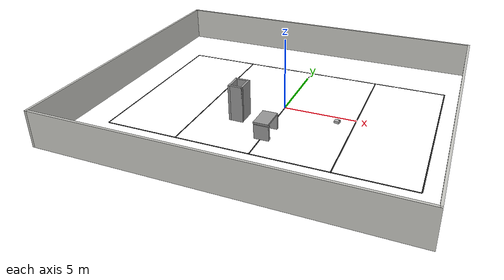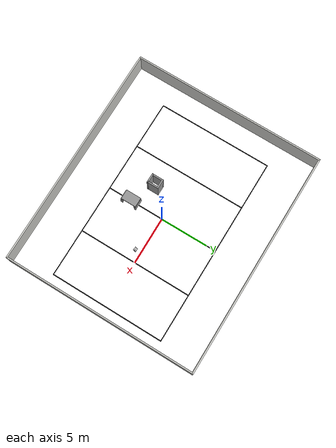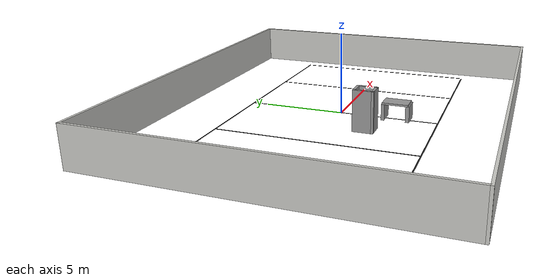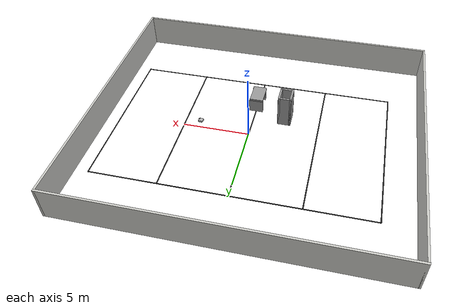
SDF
<sdf version="1.7">
 <world name="default">
  <light name="sun" type="directional">
   <pose>0 0 10 0 -0 0</pose>
   <diffuse>0.8 0.8 0.8 1</diffuse>
   <specular>0.1 0.1 0.1 1</specular>
   <attenuation>
    <range>1000</range>
    <constant>0.9</constant>
    <linear>0.01</linear>
    <quadratic>0.001</quadratic>
   </attenuation>
   <direction>-0.5 0.5 -1</direction>
   <spot><inner_angle>0</inner_angle><outer_angle>0</outer_angle><falloff>0</falloff></spot>
  </light>
  <gravity>0 0 -9.8</gravity>
  <magnetic_field>6e-06 2.3e-05 -4.2e-05</magnetic_field>
  <atmosphere type="adiabatic"/>
  <physics name="default_physics" default="0" type="ode">
   <max_step_size>0.001</max_step_size>
   <real_time_factor>1</real_time_factor>
   <real_time_update_rate>1000</real_time_update_rate>
  </physics>
  <scene><ambient>0.4 0.4 0.4 1</ambient><background>0.7 0.7 0.7 1</background><shadows>1</shadows></scene>
  <spherical_coordinates>
   <surface_model>EARTH_WGS84</surface_model>
   <latitude_deg>0</latitude_deg>
   <longitude_deg>0</longitude_deg>
   <elevation>0</elevation>
   <heading_deg>0</heading_deg>
  </spherical_coordinates>
  <model name="walls">
   <pose>-0.635 -0.01 0 0 -0 0</pose>
   <link name="Wall_11">
    <collision name="Wall_11_Collision">
     <geometry><box><size>23.5 0.15 2.5</size></box></geometry>
     <pose>0 0 1.25 0 -0 0</pose>
    </collision>
    <visual name="Wall_11_Visual">
     <pose>0 0 1.25 0 -0 0</pose>
     <geometry><box><size>23.5 0.15 2.5</size></box></geometry>
     <material>
      <script><uri>file://media/materials/scripts/gazebo.material</uri><name>Gazebo/CeilingTiled</name></script>
      <ambient>0.760784 0.662745 0.627451 1</ambient>
     </material>
     <meta><layer>0</layer></meta>
    </visual>
    <pose>0 10.05 0 0 -0 0</pose>
   </link>
   <link name="Wall_12">
    <collision name="Wall_12_Collision">
     <geometry><box><size>20.25 0.15 2.5</size></box></geometry>
     <pose>0 0 1.25 0 -0 0</pose>
    </collision>
    <visual name="Wall_12_Visual">
     <pose>0 0 1.25 0 -0 0</pose>
     <geometry><box><size>20.25 0.15 2.5</size></box></geometry>
     <material>
      <script><uri>file://media/materials/scripts/gazebo.material</uri><name>Gazebo/CeilingTiled</name></script>
      <ambient>0.760784 0.662745 0.627451 1</ambient>
     </material>
     <meta><layer>0</layer></meta>
    </visual>
    <pose>11.675 0 0 0 -0 -1.5708</pose>
   </link>
   <link name="Wall_13">
    <collision name="Wall_13_Collision">
     <geometry><box><size>23.5 0.15 2.5</size></box></geometry>
     <pose>0 0 1.25 0 -0 0</pose>
    </collision>
    <visual name="Wall_13_Visual">
     <pose>0 0 1.25 0 -0 0</pose>
     <geometry><box><size>23.5 0.15 2.5</size></box></geometry>
     <material>
      <script><uri>file://media/materials/scripts/gazebo.material</uri><name>Gazebo/CeilingTiled</name></script>
      <ambient>0.760784 0.662745 0.627451 1</ambient>
     </material>
     <meta><layer>0</layer></meta>
    </visual>
    <pose>0 -10.05 0 0 -0 3.14159</pose>
   </link>
   <link name="Wall_14">
    <collision name="Wall_14_Collision">
     <geometry><box><size>20.25 0.15 2.5</size></box></geometry>
     <pose>0 0 1.25 0 -0 0</pose>
    </collision>
    <visual name="Wall_14_Visual">
     <pose>0 0 1.25 0 -0 0</pose>
     <geometry><box><size>20.25 0.15 2.5</size></box></geometry>
     <material>
      <script><uri>file://media/materials/scripts/gazebo.material</uri><name>Gazebo/CeilingTiled</name></script>
      <ambient>0.760784 0.662745 0.627451 1</ambient>
     </material>
     <meta><layer>0</layer></meta>
    </visual>
    <pose>-11.675 0 0 0 -0 1.5708</pose>
   </link>
   <static>1</static>
  </model>
  <model name="yol line_0">
   <static>1</static>
   <link name="link_ground">
    <collision name="collision">
     <geometry><plane><normal>0 0 1</normal><size>20.043 0.08</size></plane></geometry>
     <surface><friction><ode><mu>100</mu><mu2>50</mu2></ode></friction></surface>
    </collision>
    <visual name="visual_ground">
     <cast_shadows>0</cast_shadows>
     <geometry><plane><normal>0 0 1</normal><size>20.043 0.08</size></plane></geometry>
     <material>
      <script><uri>file://media/materials/scripts/gazebo.material</uri><name>Gazebo/Black</name></script>
     </material>
    </visual>
   </link>
   <pose>-0.0185 -6.003 0 0 -0 3.14159</pose>
  </model>
  <model name="yol line_10">
   <static>1</static>
   <link name="link_ground">
    <collision name="collision">
     <geometry><plane><normal>0 0 1</normal><size>12.084 0.08</size></plane></geometry>
     <surface><friction><ode><mu>100</mu><mu2>50</mu2></ode></friction></surface>
    </collision>
    <visual name="visual_ground">
     <cast_shadows>0</cast_shadows>
     <geometry><plane><normal>0 0 1</normal><size>12.084 0.08</size></plane></geometry>
     <material>
      <script><uri>file://media/materials/scripts/gazebo.material</uri><name>Gazebo/Black</name></script>
     </material>
    </visual>
   </link>
   <pose>10 0.001 0 0 0 -1.5708</pose>
  </model>
  <model name="yol line_2">
   <static>1</static>
   <link name="link_ground">
    <collision name="collision">
     <geometry><plane><normal>0 0 1</normal><size>12.005 0.08</size></plane></geometry>
     <surface><friction><ode><mu>100</mu><mu2>50</mu2></ode></friction></surface>
    </collision>
    <visual name="visual_ground">
     <cast_shadows>0</cast_shadows>
     <geometry><plane><normal>0 0 1</normal><size>12.005 0.08</size></plane></geometry>
     <material>
      <script><uri>file://media/materials/scripts/gazebo.material</uri><name>Gazebo/Black</name></script>
     </material>
    </visual>
   </link>
   <pose>0 -0.0015 0 0 0 -1.5708</pose>
  </model>
  <model name="yol line_12">
   <static>1</static>
   <link name="link_ground">
    <collision name="collision">
     <geometry><plane><normal>0 0 1</normal><size>12.005 0.08</size></plane></geometry>
     <surface><friction><ode><mu>100</mu><mu2>50</mu2></ode></friction></surface>
    </collision>
    <visual name="visual_ground">
     <cast_shadows>0</cast_shadows>
     <geometry><plane><normal>0 0 1</normal><size>12.005 0.08</size></plane></geometry>
     <material>
      <script><uri>file://media/materials/scripts/gazebo.material</uri><name>Gazebo/Black</name></script>
     </material>
    </visual>
   </link>
   <pose>5 -0.0015 0 0 0 -1.5708</pose>
  </model>
  <model name="yol line_14">
   <static>1</static>
   <link name="link_ground">
    <collision name="collision">
     <geometry><plane><normal>0 0 1</normal><size>12.005 0.08</size></plane></geometry>
     <surface><friction><ode><mu>100</mu><mu2>50</mu2></ode></friction></surface>
    </collision>
    <visual name="visual_ground">
     <cast_shadows>0</cast_shadows>
     <geometry><plane><normal>0 0 1</normal><size>12.005 0.08</size></plane></geometry>
     <material>
      <script><uri>file://media/materials/scripts/gazebo.material</uri><name>Gazebo/Black</name></script>
     </material>
    </visual>
   </link>
   <pose>-5 -0.0015 0 0 0 -1.5708</pose>
  </model>
  <model name="yol line_16">
   <static>1</static>
   <link name="link_ground">
    <collision name="collision">
     <geometry><plane><normal>0 0 1</normal><size>12.005 0.08</size></plane></geometry>
     <surface><friction><ode><mu>100</mu><mu2>50</mu2></ode></friction></surface>
    </collision>
    <visual name="visual_ground">
     <cast_shadows>0</cast_shadows>
     <geometry><plane><normal>0 0 1</normal><size>12.005 0.08</size></plane></geometry>
     <material>
      <script><uri>file://media/materials/scripts/gazebo.material</uri><name>Gazebo/Black</name></script>
     </material>
    </visual>
   </link>
   <pose>-0.038 6.003 0 0 -0 0</pose>
  </model>
  <model name="yol line_18">
   <static>1</static>
   <link name="link_ground">
    <collision name="collision">
     <geometry><plane><normal>0 0 1</normal><size>20.002 0.08</size></plane></geometry>
     <surface><friction><ode><mu>100</mu><mu2>50</mu2></ode></friction></surface>
    </collision>
    <visual name="visual_ground">
     <cast_shadows>0</cast_shadows>
     <geometry><plane><normal>0 0 1</normal><size>20.002 0.08</size></plane></geometry>
     <material>
      <script><uri>file://media/materials/scripts/gazebo.material</uri><name>Gazebo/Black</name></script>
     </material>
    </visual>
   </link>
   <pose>-0.038 6.003 0 0 -0 0</pose>
  </model>
  <model name="yol line_8">
   <static>1</static>
   <link name="link_ground">
    <collision name="collision">
     <geometry><plane><normal>0 0 1</normal><size>12.0056 0.08</size></plane></geometry>
     <surface><friction><ode><mu>100</mu><mu2>50</mu2></ode></friction></surface>
    </collision>
    <visual name="visual_ground">
     <cast_shadows>0</cast_shadows>
     <geometry><plane><normal>0 0 1</normal><size>12.0056 0.08</size></plane></geometry>
     <material>
      <script><uri>file://media/materials/scripts/gazebo.material</uri><name>Gazebo/Black</name></script>
     </material>
    </visual>
   </link>
   <pose>-10 -0.0015 0 0 0 -1.5708</pose>
  </model>
  <model name="engelliurdf">
   <pose>-1.4275 -1.4175 0 0 -0 0</pose>
   <link name="Wall_0">
    <collision name="Wall_0_Collision">
     <geometry><box><size>1 0.15 2.5</size></box></geometry>
     <pose>0 0 1.25 0 -0 0</pose>
    </collision>
    <visual name="Wall_0_Visual">
     <pose>0 0 1.25 0 -0 0</pose>
     <geometry><box><size>1 0.15 2.5</size></box></geometry>
     <material>
      <script><uri>file://media/materials/scripts/gazebo.material</uri><name>Gazebo/Grey</name></script>
      <ambient>1 1 1 1</ambient>
     </material>
     <meta><layer>0</layer></meta>
    </visual>
    <pose>-0.9275 -1.3425 0 0 -0 3.14159</pose>
   </link>
   <link name="Wall_1">
    <collision name="Wall_1_Collision">
     <geometry><box><size>1.25 0.15 2.5</size></box></geometry>
     <pose>0 0 1.25 0 -0 0</pose>
    </collision>
    <visual name="Wall_1_Visual">
     <pose>0 0 1.25 0 -0 0</pose>
     <geometry><box><size>1.25 0.15 2.5</size></box></geometry>
     <material>
      <script><uri>file://media/materials/scripts/gazebo.material</uri><name>Gazebo/Grey</name></script>
      <ambient>1 1 1 1</ambient>
     </material>
     <meta><layer>0</layer></meta>
    </visual>
    <pose>-1.3525 -0.7925 0 0 -0 1.5708</pose>
   </link>
   <link name="Wall_2">
    <collision name="Wall_2_Collision">
     <geometry><box><size>1 0.15 2.5</size></box></geometry>
     <pose>0 0 1.25 0 -0 0</pose>
    </collision>
    <visual name="Wall_2_Visual">
     <pose>0 0 1.25 0 -0 0</pose>
     <geometry><box><size>1 0.15 2.5</size></box></geometry>
     <material>
      <script><uri>file://media/materials/scripts/gazebo.material</uri><name>Gazebo/Grey</name></script>
      <ambient>1 1 1 1</ambient>
     </material>
     <meta><layer>0</layer></meta>
    </visual>
    <pose>-0.9275 -0.2425 0 0 -0 0</pose>
   </link>
   <link name="Wall_3">
    <collision name="Wall_3_Collision">
     <geometry><box><size>1.25 0.15 2.5</size></box></geometry>
     <pose>0 0 1.25 0 -0 0</pose>
    </collision>
    <visual name="Wall_3_Visual">
     <pose>0 0 1.25 0 -0 0</pose>
     <geometry><box><size>1.25 0.15 2.5</size></box></geometry>
     <material>
      <script><uri>file://media/materials/scripts/gazebo.material</uri><name>Gazebo/Grey</name></script>
      <ambient>1 1 1 1</ambient>
     </material>
     <meta><layer>0</layer></meta>
    </visual>
    <pose>-0.5025 -0.7925 0 0 -0 -1.5708</pose>
   </link>
   <link name="Wall_4">
    <collision name="Wall_4_Collision">
     <geometry><box><size>0.15 0.15 2.5</size></box></geometry>
     <pose>0 0 1.25 0 -0 0</pose>
    </collision>
    <visual name="Wall_4_Visual">
     <pose>0 0 1.25 0 -0 0</pose>
     <geometry><box><size>0.15 0.15 2.5</size></box></geometry>
     <material>
      <script><uri>file://media/materials/scripts/gazebo.material</uri><name>Gazebo/Grey</name></script>
      <ambient>1 1 1 1</ambient>
     </material>
     <meta><layer>0</layer></meta>
    </visual>
    <pose>-0.5025 -1.3425 0 0 -0 0</pose>
   </link>
   <static>1</static>
  </model>
  <model name="robot">
   <link name="base_link">
    <inertial>
     <pose>0.09998 0 0 0 -0 0</pose>
     <mass>5.001</mass>
     <inertia><ixx>0.0201</ixx><ixy>0</ixy><ixz>0</ixz><iyy>0.02011</iyy><iyz>0</iyz><izz>0.02011</izz></inertia>
    </inertial>
    <collision name="base_link_fixed_joint_lump__chassis_collision">
     <pose>0.13 0 0.075 0 -0 0</pose>
     <geometry><box><size>0.35 0.31 0.15</size></box></geometry>
    </collision>
    <collision name="base_link_fixed_joint_lump__rear_wheel_link_collision_1">
     <pose>0.25 0 0 1.57159 1.57079 3.14159</pose>
     <geometry><sphere><radius>0.021</radius></sphere></geometry>
     <surface>
      <contact><ode><kp>1e+06</kp><kd>100</kd><max_vel>1</max_vel><min_depth>0.001</min_depth></ode></contact>
      <friction><ode><mu>0</mu><mu2>0</mu2></ode></friction>
     </surface>
    </collision>
    <visual name="base_link_fixed_joint_lump__chassis_visual">
     <pose>0.13 0 0.075 0 -0 0</pose>
     <geometry><box><size>0.35 0.31 0.15</size></box></geometry>
    </visual>
    <visual name="base_link_fixed_joint_lump__lidar_link_visual_1">
     <pose>0.25 0 0.18 0 -0 0</pose>
     <geometry><cylinder><length>0.1</length><radius>0.04</radius></cylinder></geometry>
    </visual>
    <visual name="base_link_fixed_joint_lump__rear_wheel_link_visual_2">
     <pose>0.25 0 0 1.57159 1.57079 3.14159</pose>
     <geometry><sphere><radius>0.021</radius></sphere></geometry>
    </visual>
    <sensor name="head_hokuyo_sensor" type="ray">
     <visualize>1</visualize>
     <update_rate>5.5</update_rate>
     <ray>
      <scan>
       <horizontal>
        <samples>360</samples>
        <resolution>1</resolution>
        <min_angle>-3.14</min_angle>
        <max_angle>3.14</max_angle>
       </horizontal>
       <vertical><samples>1</samples><min_angle>0</min_angle><max_angle>0</max_angle></vertical>
      </scan>
      <range><min>0.1</min><max>6</max><resolution>0.01</resolution></range>
      <noise><type>gaussian</type><mean>0</mean><stddev>0.01</stddev></noise>
     </ray>
     <plugin name="gazebo_ros_head_hokuyo_controller" filename="libgazebo_ros_laser.so">
      <topicName>/rrbot/laser/scan</topicName>
      <frameName>lidar_link</frameName>
      <robotNamespace>/</robotNamespace>
     </plugin>
     <pose>0.25 0 0.18 0 -0 0</pose>
    </sensor>
   </link>
   <joint name="left_wheel_joint" type="revolute">
    <pose relative_to="base_link">0 0.13 0.015 0 -0 0</pose>
    <parent>base_link</parent>
    <child>left_wheel_link</child>
    <axis>
     <xyz>0 1 0</xyz>
     <limit><lower>-1e+16</lower><upper>1e+16</upper></limit>
     <dynamics><spring_reference>0</spring_reference><spring_stiffness>0</spring_stiffness></dynamics>
    </axis>
   </joint>
   <link name="left_wheel_link">
    <pose relative_to="left_wheel_joint">0 0 0 0 -0 0</pose>
    <inertial>
     <mass>0.01</mass>
     <inertia><ixx>0.001</ixx><ixy>0</ixy><ixz>0</ixz><iyy>0.001</iyy><iyz>0</iyz><izz>0.001</izz></inertia>
    </inertial>
    <collision name="left_wheel_link_collision">
     <pose>0 0 0 1.57159 1.57079 3.14159</pose>
     <geometry><cylinder><length>0.024</length><radius>0.036</radius></cylinder></geometry>
     <surface>
      <contact><ode><kp>1e+06</kp><kd>100</kd><max_vel>1</max_vel><min_depth>0.001</min_depth></ode></contact>
      <friction><ode><mu>1</mu><mu2>1</mu2></ode></friction>
     </surface>
    </collision>
    <visual name="left_wheel_link_visual">
     <pose>0 0 0 1.57159 1.57079 3.14159</pose>
     <geometry><cylinder><length>0.024</length><radius>0.036</radius></cylinder></geometry>
    </visual>
   </link>
   <joint name="right_wheel_joint" type="revolute">
    <pose relative_to="base_link">0 -0.13 0.015 0 -0 0</pose>
    <parent>base_link</parent>
    <child>right_wheel_link</child>
    <axis>
     <xyz>0 1 0</xyz>
     <limit><lower>-1e+16</lower><upper>1e+16</upper></limit>
     <dynamics><spring_reference>0</spring_reference><spring_stiffness>0</spring_stiffness></dynamics>
    </axis>
   </joint>
   <link name="right_wheel_link">
    <pose relative_to="right_wheel_joint">0 0 0 0 -0 0</pose>
    <inertial>
     <mass>0.01</mass>
     <inertia><ixx>0.001</ixx><ixy>0</ixy><ixz>0</ixz><iyy>0.001</iyy><iyz>0</iyz><izz>0.001</izz></inertia>
    </inertial>
    <collision name="right_wheel_link_collision">
     <pose>0 0 0 1.57159 1.57079 3.14159</pose>
     <geometry><cylinder><length>0.024</length><radius>0.036</radius></cylinder></geometry>
     <surface>
      <contact><ode><kp>1e+06</kp><kd>100</kd><max_vel>1</max_vel><min_depth>0.001</min_depth></ode></contact>
      <friction><ode><mu>1</mu><mu2>1</mu2></ode></friction>
     </surface>
    </collision>
    <visual name="right_wheel_link_visual">
     <pose>0 0 0 1.57159 1.57079 3.14159</pose>
     <geometry><cylinder><length>0.024</length><radius>0.036</radius></cylinder></geometry>
    </visual>
   </link>
   <plugin name="differential_drive_controller" filename="libgazebo_ros_diff_drive.so">
    <alwaysOn>1</alwaysOn>
    <updateRate>40</updateRate>
    <leftJoint>left_wheel_joint</leftJoint>
    <rightJoint>right_wheel_joint</rightJoint>
    <wheelSeparation>0.26</wheelSeparation>
    <wheelDiameter>0.072</wheelDiameter>
    <wheelTorque>1</wheelTorque>
    <commandTopic>cmd_vel</commandTopic>
    <odometryTopic>odom</odometryTopic>
    <odometryFrame>odom</odometryFrame>
    <robotBaseFrame>base_footprint</robotBaseFrame>
    <robotNamespace>/</robotNamespace>
   </plugin>
   <plugin name="p3d_base_controller" filename="libgazebo_ros_p3d.so">
    <alwaysOn>1</alwaysOn>
    <updateRate>100.0</updateRate>
    <bodyName>base_link</bodyName>
    <topicName>simple_controller/absolute_position</topicName>
    <gaussianNoise>0</gaussianNoise>
    <frameName>map</frameName>
    <xyzOffsets>0 0 0</xyzOffsets>
    <rpyOffsets>0 0 0</rpyOffsets>
    <robotNamespace>/</robotNamespace>
   </plugin>
   <plugin name="wind_plugin" filename="libgazebo_ros_wind.so">
    <robotNamespace>/robot</robotNamespace>
    <topicName>wind</topicName>
    <frameName>base_link</frameName>
    <windDirection>0 1 0</windDirection>
    <windForceMean>5</windForceMean>
    <windForceVariance>1</windForceVariance>
   </plugin>
   <frame name="chassis_joint" attached_to="base_link"><pose>0.1 0 0 0 -0 0</pose></frame>
   <frame name="chassis" attached_to="chassis_joint"/>
   <frame name="lidar_joint" attached_to="base_link"><pose>0.25 0 0.18 0 -0 0</pose></frame>
   <frame name="lidar_link" attached_to="lidar_joint"/>
   <frame name="rear_castor_joint" attached_to="base_link"/>
   <frame name="rear_wheel_link" attached_to="rear_castor_joint"/>
   <pose>3.75037 -0.597359 0.020904 -2.9e-05 0.003624 -0.168497</pose>
  </model>
  <model name="unit_box">
   <pose>0.031249 -2.75535 0.499989 7e-06 5e-06 -0.000237</pose>
   <link name="link">
    <inertial>
     <mass>1</mass>
     <inertia>
      <ixx>0.166667</ixx>
      <ixy>0</ixy>
      <ixz>0</ixz>
      <iyy>0.166667</iyy>
      <iyz>0</iyz>
      <izz>0.166667</izz>
     </inertia>
    </inertial>
    <collision name="collision"><geometry><box><size>1.03803 0.196344 1</size></box></geometry></collision>
    <visual name="visual">
     <geometry><box><size>1.03803 0.196344 1</size></box></geometry>
     <material>
      <script><name>Gazebo/Grey</name><uri>file://media/materials/scripts/gazebo.material</uri></script>
     </material>
    </visual>
   </link>
  </model>
  <model name="unit_box_0">
   <pose>0.069456 -4.23824 0.5 0 -0 0.000104</pose>
   <link name="link">
    <inertial>
     <mass>1</mass>
     <inertia>
      <ixx>0.166667</ixx>
      <ixy>0</ixy>
      <ixz>0</ixz>
      <iyy>0.166667</iyy>
      <iyz>0</iyz>
      <izz>0.166667</izz>
     </inertia>
    </inertial>
    <collision name="collision"><geometry><box><size>1 0.231645 1</size></box></geometry></collision>
    <visual name="visual">
     <geometry><box><size>1 0.231645 1</size></box></geometry>
     <material>
      <script><name>Gazebo/Grey</name><uri>file://media/materials/scripts/gazebo.material</uri></script>
     </material>
    </visual>
   </link>
  </model>
  <model name="unit_box_1">
   <pose>0.010991 -3.48959 1.05604 -3e-06 9e-06 -0.000406</pose>
   <link name="link">
    <inertial>
     <mass>1</mass>
     <inertia>
      <ixx>0.166667</ixx>
      <ixy>0</ixy>
      <ixz>0</ixz>
      <iyy>0.166667</iyy>
      <iyz>0</iyz>
      <izz>0.166667</izz>
     </inertia>
    </inertial>
    <collision name="collision"><geometry><box><size>1 1.58157 0.112091</size></box></geometry></collision>
    <visual name="visual">
     <geometry><box><size>1 1.58157 0.112091</size></box></geometry>
     <material>
      <script><name>Gazebo/Grey</name><uri>file://media/materials/scripts/gazebo.material</uri></script>
     </material>
    </visual>
   </link>
  </model>
 </world>
</sdf>
